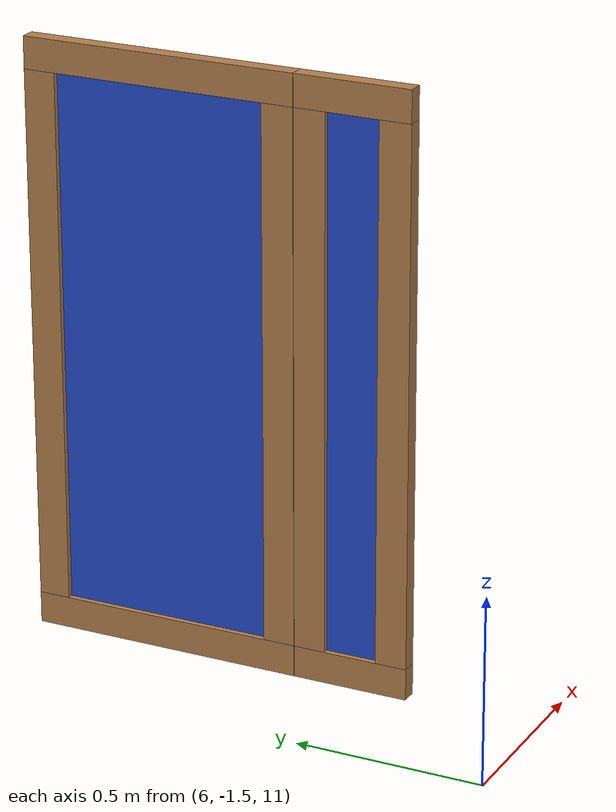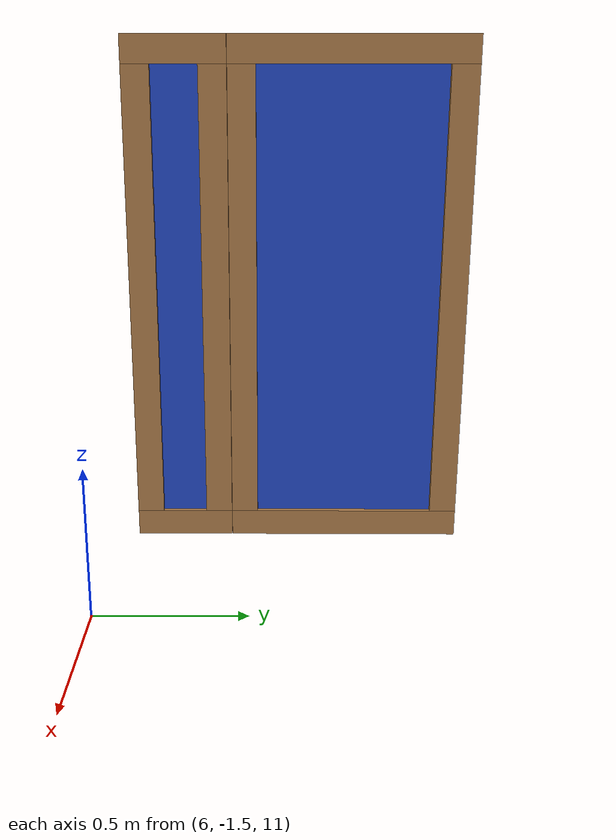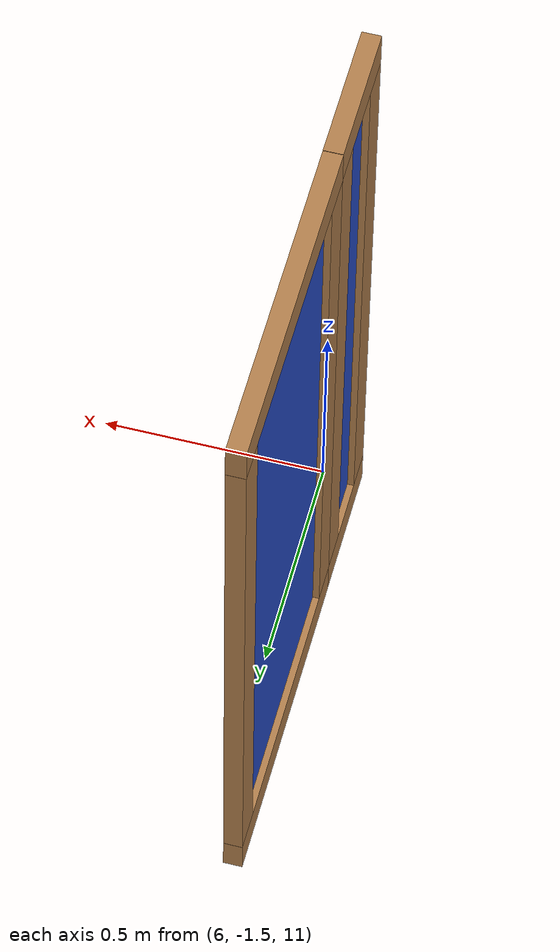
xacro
<?xml version="1.0" ?>
<robot name="${room_name}_window" xmlns:xacro="http://ros.org/wiki/xacro" xmlns:xi="http://www.w3.org/2001/XInclude" xmlns:gazebo="http://playerstage.sourceforge.net/gazebo/xmlschema/#gz" xmlns:model="http://playerstage.sourceforge.net/gazebo/xmlschema/#model" xmlns:sensor="http://playerstage.sourceforge.net/gazebo/xmlschema/#sensor" xmlns:body="http://playerstage.sourceforge.net/gazebo/xmlschema/#body" xmlns:geom="http://playerstage.sourceforge.net/gazebo/xmlschema/#geom" xmlns:joint="http://playerstage.sourceforge.net/gazebo/xmlschema/#joint" xmlns:interface="http://playerstage.sourceforge.net/gazebo/xmlschema/#interface" xmlns:rendering="http://playerstage.sourceforge.net/gazebo/xmlschema/#rendering" xmlns:renderable="http://playerstage.sourceforge.net/gazebo/xmlschema/#renderable" xmlns:controller="http://playerstage.sourceforge.net/gazebo/xmlschema/#controller" xmlns:physics="http://playerstage.sourceforge.net/gazebo/xmlschema/#physics">
    <property name="room_name" value="livingroom2_f1" />
    <property name="x_position" value="10.92" />
    <property name="y_position" value="3.65" />
    <property name="z_position" value="11.25" />
    <property name="x_world_offset" value="-5" />
    <property name="y_world_offset" value="-5" />
    <property name="lower_limit" value="-1.57" />
    <property name="orientation" value="1.57" />
    <property name="l1" value=".7" />
    <property name="w1" value=".04" />
    <property name="h1" value=".0798" />
    <property name="l2" value=".08" />
    <property name="w2" value=".04" />
    <property name="h2" value="1.34" />
    <property name="l3" value=".294" />
    <property name="gap" value="0.002" />
    <joint name="${room_name}_window_joint" type="revolute">
        <axis xyz="0 0 1" />
        <parent link="world" />
        <child link="${room_name}_smallwindow_block" />
        <origin rpy="0 0 ${orientation}" xyz="${x_position + x_world_offset } ${gap + y_world_offset +y_position} ${z_position}" />
        <limit effort="100.0" lower="${lower_limit}" upper="0" velocity="5" />
    </joint>
    <joint name="${orientation}smallwindowblock_${room_name}smallwindowbase" type="fixed">
        <axis xyz="0 0 1" />
        <parent link="${room_name}_smallwindow_block" />
        <child link="${room_name}_smallwindow_base" />
        <origin rpy="0 0 0" xyz="0 0 0" />
    </joint>
    <joint name="${room_name}smallwindowbase_${room_name}smallwindowright" type="fixed">
        <axis xyz="0 0 1" />
        <parent link="${room_name}_smallwindow_base" />
        <child link="${room_name}_smallwindow_right" />
        <origin rpy="0 0 0" xyz="${l3-h1/2} ${w1/2} ${h1}" />
    </joint>
    <joint name="${room_name}smallwindowbase_${room_name}smallwindowleft" type="fixed">
        <axis xyz="0 0 1" />
        <parent link="${room_name}_smallwindow_base" />
        <child link="${room_name}_smallwindow_left" />
        <origin rpy="0 0 0" xyz="${h1/2} ${w1/2} ${h1}" />
    </joint>
    <joint name="${room_name}smallwindowbase_${room_name}smallwindowtop" type="fixed">
        <axis xyz="0 0 1" />
        <parent link="${room_name}_smallwindow_base" />
        <child link="${room_name}_smallwindow_top" />
        <origin rpy="0 0 0" xyz="${l3/2} ${w1/2} ${h1 + h2}" />
    </joint>
    <joint name="${room_name}smallwindowbase_${room_name}smallwindowglass" type="fixed">
        <axis xyz="0 0 1" />
        <parent link="${room_name}_smallwindow_base" />
        <child link="${room_name}_smallwindow_glass" />
        <origin rpy="0 0 0" xyz="${l3/2} ${w1/2} ${h1}" />
    </joint>
    <joint name="world_${room_name}bigwindowbase" type="fixed">
        <axis xyz="0 0 1" />
        <parent link="world" />
        <child link="${room_name}_bigwindow_base" />
        <origin rpy="0 0 ${orientation}" xyz="${x_position + x_world_offset} ${l3 + gap + y_world_offset + y_position + .001} ${z_position}" />
    </joint>
    <joint name="${room_name}bigwindowbase_${room_name}bigwindowright" type="fixed">
        <axis xyz="0 0 1" />
        <parent link="${room_name}_bigwindow_base" />
        <child link="${room_name}_bigwindow_right" />
        <origin rpy="0 0 0" xyz="${l1-h1/2} ${w1/2} ${h1}" />
    </joint>
    <joint name="${room_name}bigwindowbase_${room_name}bigwindowleft" type="fixed">
        <axis xyz="0 0 1" />
        <parent link="${room_name}_bigwindow_base" />
        <child link="${room_name}_bigwindow_left" />
        <origin rpy="0 0 0" xyz="${h1/2} ${w1/2} ${h1}" />
    </joint>
    <joint name="${room_name}bigwindowbase_${room_name}bigwindowtop" type="fixed">
        <axis xyz="0 0 1" />
        <parent link="${room_name}_bigwindow_base" />
        <child link="${room_name}_bigwindow_top" />
        <origin rpy="0 0 0" xyz="${l1/2} ${w1/2} ${h1 + h2}" />
    </joint>
    <joint name="${room_name}bigwindowbase_${room_name}bigwindowglass" type="fixed">
        <axis xyz="0 0 1" />
        <parent link="${room_name}_bigwindow_base" />
        <child link="${room_name}_bigwindow_glass" />
        <origin rpy="0 0 0" xyz="${l1/2} ${w1/2} ${h1}" />
    </joint>
    <link name="world" />
    <link name="${room_name}_smallwindow_block">
        <inertial>
            <mass value="1" />
            <origin xyz="0 0 0" />
            <inertia ixx="1.0" ixy="0.0" ixz="0.0" iyy="1" iyz="0.0" izz="3" />
        </inertial>
        <visual>
            <origin rpy="0 0 0" xyz="0 0 0" />
            <geometry>
                <box size="0 0 0" />
            </geometry>
        </visual>
        <collision>
            <origin rpy="0 0 0" xyz="0 0 0" />
            <geometry>
                <box size="0 0 0" />
            </geometry>
        </collision>
    </link>
    <gazebo reference="${room_name}_smallwindow_block">
        <laserRetro>2000</laserRetro>
        <dampingFactor>0.006</dampingFactor>
        <selfCollide>false</selfCollide>
        <turnGravityOff>true</turnGravityOff>
    </gazebo>
    <link name="${room_name}_smallwindow_base">
        <inertial>
            <mass value="10" />
            <origin xyz="0 0 0" />
            <inertia ixx="1.0" ixy="0.0" ixz="0.0" iyy="1" iyz="0.0" izz="3" />
        </inertial>
        <visual>
            <origin rpy="0 0 0" xyz="${l3/2} ${w1/2} ${h1/2}" />
            <geometry>
                <box size="${l3} ${w1} ${h1}" />
            </geometry>
        </visual>
        <collision>
            <origin rpy="0 0 0" xyz="${l3/2} ${w1/2} ${h1/2}" />
            <geometry>
                <box size="${l3} ${w1} ${h1}" />
            </geometry>
        </collision>
    </link>
    <gazebo reference="${room_name}_smallwindow_base">
        <material>angen_gazebo/DoorWood</material>
        <laserRetro>2000</laserRetro>
        <dampingFactor>0.006</dampingFactor>
        <selfCollide>false</selfCollide>
        <turnGravityOff>true</turnGravityOff>
    </gazebo>
    <link name="${room_name}_smallwindow_right">
        <inertial>
            <mass value="10" />
            <origin xyz="0 0 0" />
            <inertia ixx="1.0" ixy="0.0" ixz="0.0" iyy="1" iyz="0.0" izz="3" />
        </inertial>
        <visual>
            <origin rpy="0 0 0" xyz="0 0 ${h2 / 2}" />
            <geometry>
                <box size="${l2} ${w2} ${h2}" />
            </geometry>
        </visual>
        <collision>
            <origin rpy="0 0 0" xyz="0 0 ${h2 / 2}" />
            <geometry>
                <box size="${l2} ${w2} ${h2}" />
            </geometry>
        </collision>
    </link>
    <gazebo reference="${room_name}_smallwindow_right">
        <material>angen_gazebo/DoorWood</material>
        <laserRetro>2000</laserRetro>
        <dampingFactor>0.006</dampingFactor>
        <selfCollide>false</selfCollide>
        <turnGravityOff>true</turnGravityOff>
    </gazebo>
    <link name="${room_name}_smallwindow_left">
        <inertial>
            <mass value="10" />
            <origin xyz="0 0 0" />
            <inertia ixx="1.0" ixy="0.0" ixz="0.0" iyy="1" iyz="0.0" izz="3" />
        </inertial>
        <visual>
            <origin rpy="0 0 0" xyz="0 0 ${h2 / 2}" />
            <geometry>
                <box size="${l2} ${w2} ${h2}" />
            </geometry>
        </visual>
        <collision>
            <origin rpy="0 0 0" xyz="0 0 ${h2 / 2}" />
            <geometry>
                <box size="${l2} ${w2} ${h2}" />
            </geometry>
        </collision>
    </link>
    <gazebo reference="${room_name}_smallwindow_left">
        <material>angen_gazebo/DoorWood</material>
        <laserRetro>2000</laserRetro>
        <dampingFactor>0.006</dampingFactor>
        <selfCollide>false</selfCollide>
        <turnGravityOff>true</turnGravityOff>
    </gazebo>
    <link name="${room_name}_smallwindow_top">
        <inertial>
            <mass value="10" />
            <origin xyz="0 0 0" />
            <inertia ixx="1.0" ixy="0.0" ixz="0.0" iyy="1" iyz="0.0" izz="3" />
        </inertial>
        <visual>
            <origin rpy="0 0 0" xyz="0 0 ${h1/2}" />
            <geometry>
                <box size="${l3} ${w1} ${h1}" />
            </geometry>
        </visual>
        <collision>
            <origin rpy="0 0 0" xyz="0 0 ${h1/2}" />
            <geometry>
                <box size="${l3} ${w1} ${h1}" />
            </geometry>
        </collision>
    </link>
    <gazebo reference="${room_name}_smallwindow_top">
        <material>angen_gazebo/DoorWood</material>
        <laserRetro>2000</laserRetro>
        <dampingFactor>0.006</dampingFactor>
        <selfCollide>false</selfCollide>
        <turnGravityOff>true</turnGravityOff>
    </gazebo>
    <link name="${room_name}_smallwindow_glass">
        <inertial>
            <mass value="10" />
            <origin xyz="0 0 0" />
            <inertia ixx="1.0" ixy="0.0" ixz="0.0" iyy="1" iyz="0.0" izz="3" />
        </inertial>
        <visual>
            <origin rpy="0 0 0" xyz="0 0 ${h2/2}" />
            <geometry>
                <box size="${l3-2*h1} 0.012 ${h2}" />
            </geometry>
        </visual>
        <collision>
            <origin rpy="0 0 0" xyz="0 0 ${h2/2}" />
            <geometry>
                <box size="${l3-2*h1} 0.012 ${h2}" />
            </geometry>
        </collision>
    </link>
    <gazebo reference="${room_name}_smallwindow_glass">
        <material>Gazebo/BlueTransparent</material>
        <laserRetro>2000</laserRetro>
        <dampingFactor>0.006</dampingFactor>
        <selfCollide>false</selfCollide>
        <turnGravityOff>true</turnGravityOff>
    </gazebo>
    <link name="${room_name}_bigwindow_base">
        <inertial>
            <mass value="10" />
            <origin xyz="0 0 0" />
            <inertia ixx="1.0" ixy="0.0" ixz="0.0" iyy="1" iyz="0.0" izz="3" />
        </inertial>
        <visual>
            <origin rpy="0 0 0" xyz="${l1/2} ${w1/2} ${h1/2}" />
            <geometry>
                <box size="${l1} ${w1} ${h1}" />
            </geometry>
        </visual>
        <collision>
            <origin rpy="0 0 0" xyz="${l1/2} ${w1/2} ${h1/2}" />
            <geometry>
                <box size="${l1} ${w1} ${h1}" />
            </geometry>
        </collision>
    </link>
    <gazebo reference="${room_name}_bigwindow_base">
        <material>angen_gazebo/DoorWood</material>
        <laserRetro>2000</laserRetro>
        <dampingFactor>0.006</dampingFactor>
        <selfCollide>false</selfCollide>
        <turnGravityOff>true</turnGravityOff>
    </gazebo>
    <link name="${room_name}_bigwindow_right">
        <inertial>
            <mass value="10" />
            <origin xyz="0 0 0" />
            <inertia ixx="1.0" ixy="0.0" ixz="0.0" iyy="1" iyz="0.0" izz="3" />
        </inertial>
        <visual>
            <origin rpy="0 0 0" xyz="0 0 ${h2 / 2}" />
            <geometry>
                <box size="${l2} ${w2} ${h2}" />
            </geometry>
        </visual>
        <collision>
            <origin rpy="0 0 0" xyz="0 0 ${h2 / 2}" />
            <geometry>
                <box size="${l2} ${w2} ${h2}" />
            </geometry>
        </collision>
    </link>
    <gazebo reference="${room_name}_bigwindow_right">
        <material>angen_gazebo/DoorWood</material>
        <laserRetro>2000</laserRetro>
        <dampingFactor>0.006</dampingFactor>
        <selfCollide>false</selfCollide>
        <turnGravityOff>true</turnGravityOff>
    </gazebo>
    <link name="${room_name}_bigwindow_left">
        <inertial>
            <mass value="10" />
            <origin xyz="0 0 0" />
            <inertia ixx="1.0" ixy="0.0" ixz="0.0" iyy="1" iyz="0.0" izz="3" />
        </inertial>
        <visual>
            <origin rpy="0 0 0" xyz="0 0 ${h2 / 2}" />
            <geometry>
                <box size="${l2} ${w2} ${h2}" />
            </geometry>
        </visual>
        <collision>
            <origin rpy="0 0 0" xyz="0 0 ${h2 / 2}" />
            <geometry>
                <box size="${l2} ${w2} ${h2}" />
            </geometry>
        </collision>
    </link>
    <gazebo reference="${room_name}_bigwindow_left">
        <material>angen_gazebo/DoorWood</material>
        <laserRetro>2000</laserRetro>
        <dampingFactor>0.006</dampingFactor>
        <selfCollide>false</selfCollide>
        <turnGravityOff>true</turnGravityOff>
    </gazebo>
    <link name="${room_name}_bigwindow_top">
        <inertial>
            <mass value="10" />
            <origin xyz="0 0 0" />
            <inertia ixx="1.0" ixy="0.0" ixz="0.0" iyy="1" iyz="0.0" izz="3" />
        </inertial>
        <visual>
            <origin rpy="0 0 0" xyz="0 0 ${h1/2}" />
            <geometry>
                <box size="${l1} ${w1} ${h1}" />
            </geometry>
        </visual>
        <collision>
            <origin rpy="0 0 0" xyz="0 0 ${h1/2}" />
            <geometry>
                <box size="${l1} ${w1} ${h1}" />
            </geometry>
        </collision>
    </link>
    <gazebo reference="${room_name}_bigwindow_top">
        <material>angen_gazebo/DoorWood</material>
        <laserRetro>2000</laserRetro>
        <dampingFactor>0.006</dampingFactor>
        <selfCollide>false</selfCollide>
        <turnGravityOff>true</turnGravityOff>
    </gazebo>
    <link name="${room_name}_bigwindow_glass">
        <inertial>
            <mass value="10" />
            <origin xyz="0 0 0" />
            <inertia ixx="1.0" ixy="0.0" ixz="0.0" iyy="1" iyz="0.0" izz="3" />
        </inertial>
        <visual>
            <origin rpy="0 0 0" xyz="0 0 ${h2/2}" />
            <geometry>
                <box size="${l1-2*h1} 0.012 ${h2}" />
            </geometry>
        </visual>
        <collision>
            <origin rpy="0 0 0" xyz="0 0 ${h2/2}" />
            <geometry>
                <box size="${l1-2*h1} 0.012 ${h2}" />
            </geometry>
        </collision>
    </link>
    <gazebo reference="${room_name}_bigwindow_glass">
        <material>Gazebo/BlueTransparent</material>
        <laserRetro>2000</laserRetro>
        <dampingFactor>0.006</dampingFactor>
        <selfCollide>false</selfCollide>
        <turnGravityOff>true</turnGravityOff>
    </gazebo>
    <gazebo>
        <controller:gazebo_ros_p3d name="p3d_window_controller" plugin="libgazebo_ros_p3d.so">
            <alwaysOn>true</alwaysOn>
            <updateRate>100.0</updateRate>
            <bodyName>${room_name}_smallwindow_block</bodyName>
            <topicName>${room_name}_window_pose</topicName>
            <serviceName>${room_name}_window_pose_service</serviceName>
            <frameName>map</frameName>
            <robotNamespace>window</robotNamespace>
            <interface:position name="p3d_window_position" />
        </controller:gazebo_ros_p3d>
        <transmission type="pr2_mechanism_model/SimpleTransmission" name="${room_name}_window_trans">
            <actuator name="${room_name}_window_motor" />
            <joint name="${room_name}_window_joint" />
            <mechanicalReduction>1</mechanicalReduction>
            <motorTorqueConstant>1</motorTorqueConstant>
        </transmission>
    </gazebo>
</robot>
